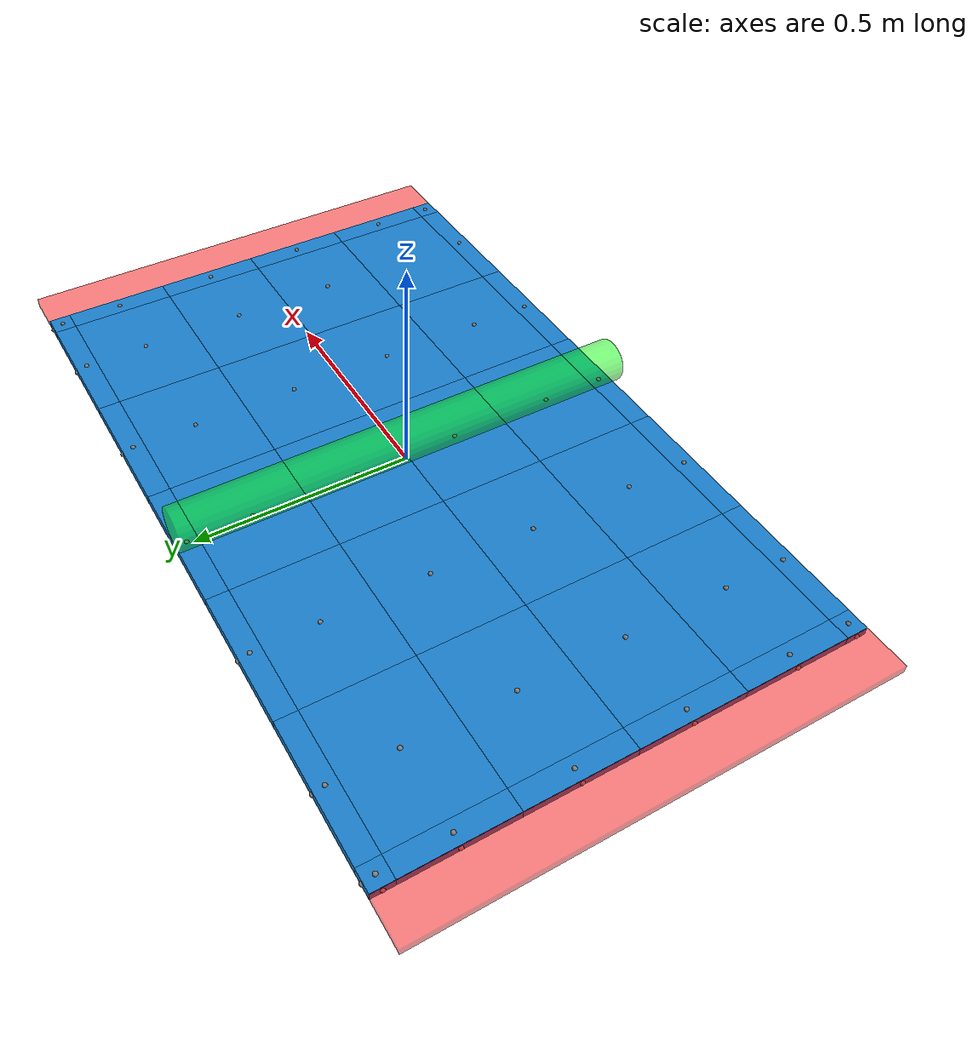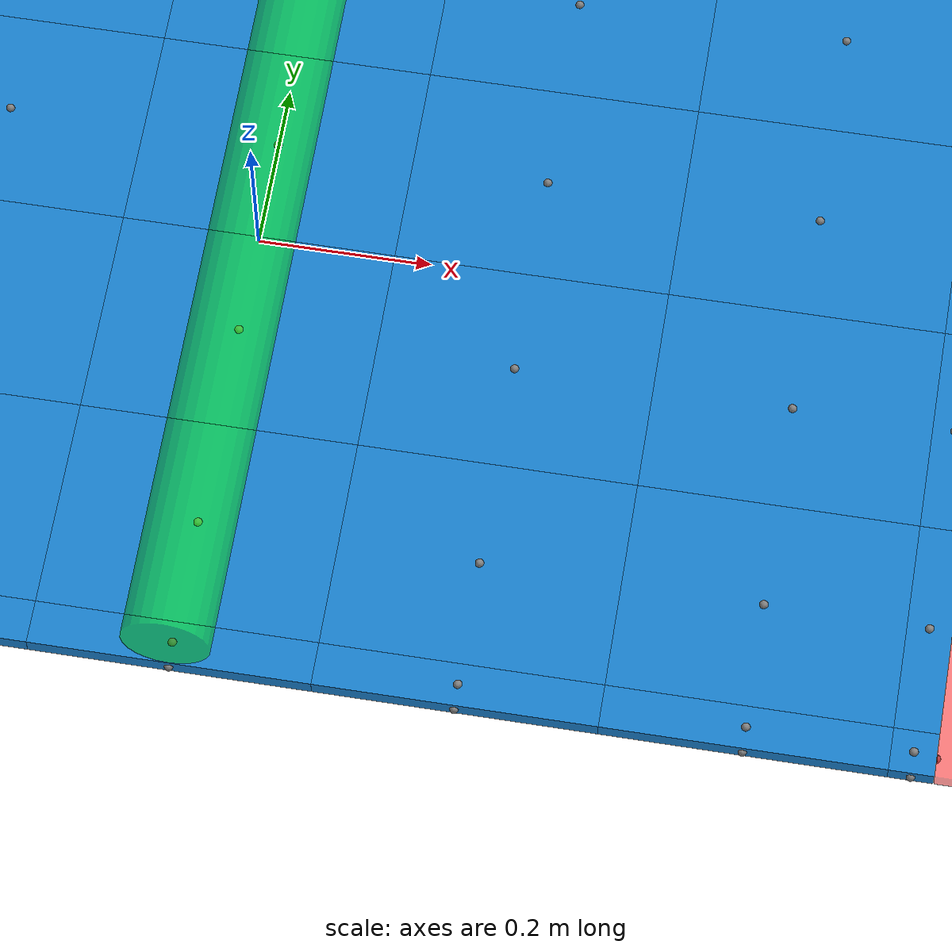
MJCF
<mujoco model="stiffness_test">
  <option integrator="implicitfast" timestep="0.001" gravity="0 0 0"><flag contact="enable"/></option>
  <default>
    <joint armature="0.01" damping="5.0"/>
    <geom friction="0.8" solref="0.02 1.0" solimp="0.9 0.95 0.001"/>
  </default>
  <worldbody>
    <light pos="0 0 5" dir="0 0 -1"/>
    <body name="BOpenCell">
      <body name="b_bopencell_0_0_0" pos="-0.81500 -0.51500 0.00000">
        <joint type="slide" axis="1 0 0"/>
        <joint type="slide" axis="0 1 0"/>
        <joint type="slide" axis="0 0 1"/>
        <joint type="ball"/>
        <geom type="box" size="0.02500 0.02500 0.01000" mass="0.006889" rgba="0.1 0.5 0.8 1.0" contype="4" conaffinity="2" friction="0.8" solref="0.01 1.0" solimp="0.9 0.95 0.001 0.5 2.0"/>
        <site name="s_BOpenCell_0_0_0_PX" pos="0.02500 0 0"/>
        <site name="s_BOpenCell_0_0_0_NX" pos="-0.02500 0 0"/>
        <site name="s_BOpenCell_0_0_0_PY" pos="0 0.02500 0"/>
        <site name="s_BOpenCell_0_0_0_NY" pos="0 -0.02500 0"/>
        <site name="s_BOpenCell_0_0_0_PZ" pos="0 0 0.01000"/>
        <site name="s_BOpenCell_0_0_0_NZ" pos="0 0 -0.01000"/>
      </body>
      <body name="b_bopencell_0_1_0" pos="-0.81500 -0.36750 0.00000">
        <joint type="slide" axis="1 0 0"/>
        <joint type="slide" axis="0 1 0"/>
        <joint type="slide" axis="0 0 1"/>
        <joint type="ball"/>
        <geom type="box" size="0.02500 0.12250 0.01000" mass="0.033758" rgba="0.1 0.5 0.8 1.0" contype="4" conaffinity="2" friction="0.8" solref="0.01 1.0" solimp="0.9 0.95 0.001 0.5 2.0"/>
        <site name="s_BOpenCell_0_1_0_PX" pos="0.02500 0 0"/>
        <site name="s_BOpenCell_0_1_0_NX" pos="-0.02500 0 0"/>
        <site name="s_BOpenCell_0_1_0_PY" pos="0 0.12250 0"/>
        <site name="s_BOpenCell_0_1_0_NY" pos="0 -0.12250 0"/>
        <site name="s_BOpenCell_0_1_0_PZ" pos="0 0 0.01000"/>
        <site name="s_BOpenCell_0_1_0_NZ" pos="0 0 -0.01000"/>
      </body>
      <body name="b_bopencell_0_2_0" pos="-0.81500 -0.12250 0.00000">
        <joint type="slide" axis="1 0 0"/>
        <joint type="slide" axis="0 1 0"/>
        <joint type="slide" axis="0 0 1"/>
        <joint type="ball"/>
        <geom type="box" size="0.02500 0.12250 0.01000" mass="0.033758" rgba="0.1 0.5 0.8 1.0" contype="4" conaffinity="2" friction="0.8" solref="0.01 1.0" solimp="0.9 0.95 0.001 0.5 2.0"/>
        <site name="s_BOpenCell_0_2_0_PX" pos="0.02500 0 0"/>
        <site name="s_BOpenCell_0_2_0_NX" pos="-0.02500 0 0"/>
        <site name="s_BOpenCell_0_2_0_PY" pos="0 0.12250 0"/>
        <site name="s_BOpenCell_0_2_0_NY" pos="0 -0.12250 0"/>
        <site name="s_BOpenCell_0_2_0_PZ" pos="0 0 0.01000"/>
        <site name="s_BOpenCell_0_2_0_NZ" pos="0 0 -0.01000"/>
      </body>
      <body name="b_bopencell_0_3_0" pos="-0.81500 0.12250 0.00000">
        <joint type="slide" axis="1 0 0"/>
        <joint type="slide" axis="0 1 0"/>
        <joint type="slide" axis="0 0 1"/>
        <joint type="ball"/>
        <geom type="box" size="0.02500 0.12250 0.01000" mass="0.033758" rgba="0.1 0.5 0.8 1.0" contype="4" conaffinity="2" friction="0.8" solref="0.01 1.0" solimp="0.9 0.95 0.001 0.5 2.0"/>
        <site name="s_BOpenCell_0_3_0_PX" pos="0.02500 0 0"/>
        <site name="s_BOpenCell_0_3_0_NX" pos="-0.02500 0 0"/>
        <site name="s_BOpenCell_0_3_0_PY" pos="0 0.12250 0"/>
        <site name="s_BOpenCell_0_3_0_NY" pos="0 -0.12250 0"/>
        <site name="s_BOpenCell_0_3_0_PZ" pos="0 0 0.01000"/>
        <site name="s_BOpenCell_0_3_0_NZ" pos="0 0 -0.01000"/>
      </body>
      <body name="b_bopencell_0_4_0" pos="-0.81500 0.36750 0.00000">
        <joint type="slide" axis="1 0 0"/>
        <joint type="slide" axis="0 1 0"/>
        <joint type="slide" axis="0 0 1"/>
        <joint type="ball"/>
        <geom type="box" size="0.02500 0.12250 0.01000" mass="0.033758" rgba="0.1 0.5 0.8 1.0" contype="4" conaffinity="2" friction="0.8" solref="0.01 1.0" solimp="0.9 0.95 0.001 0.5 2.0"/>
        <site name="s_BOpenCell_0_4_0_PX" pos="0.02500 0 0"/>
        <site name="s_BOpenCell_0_4_0_NX" pos="-0.02500 0 0"/>
        <site name="s_BOpenCell_0_4_0_PY" pos="0 0.12250 0"/>
        <site name="s_BOpenCell_0_4_0_NY" pos="0 -0.12250 0"/>
        <site name="s_BOpenCell_0_4_0_PZ" pos="0 0 0.01000"/>
        <site name="s_BOpenCell_0_4_0_NZ" pos="0 0 -0.01000"/>
      </body>
      <body name="b_bopencell_0_5_0" pos="-0.81500 0.51500 0.00000">
        <joint type="slide" axis="1 0 0"/>
        <joint type="slide" axis="0 1 0"/>
        <joint type="slide" axis="0 0 1"/>
        <joint type="ball"/>
        <geom type="box" size="0.02500 0.02500 0.01000" mass="0.006889" rgba="0.1 0.5 0.8 1.0" contype="4" conaffinity="2" friction="0.8" solref="0.01 1.0" solimp="0.9 0.95 0.001 0.5 2.0"/>
        <site name="s_BOpenCell_0_5_0_PX" pos="0.02500 0 0"/>
        <site name="s_BOpenCell_0_5_0_NX" pos="-0.02500 0 0"/>
        <site name="s_BOpenCell_0_5_0_PY" pos="0 0.02500 0"/>
        <site name="s_BOpenCell_0_5_0_NY" pos="0 -0.02500 0"/>
        <site name="s_BOpenCell_0_5_0_PZ" pos="0 0 0.01000"/>
        <site name="s_BOpenCell_0_5_0_NZ" pos="0 0 -0.01000"/>
      </body>
      <body name="b_bopencell_1_0_0" pos="-0.63200 -0.51500 0.00000">
        <joint type="slide" axis="1 0 0"/>
        <joint type="slide" axis="0 1 0"/>
        <joint type="slide" axis="0 0 1"/>
        <joint type="ball"/>
        <geom type="box" size="0.15800 0.02500 0.01000" mass="0.043541" rgba="0.1 0.5 0.8 1.0" contype="4" conaffinity="2" friction="0.8" solref="0.01 1.0" solimp="0.9 0.95 0.001 0.5 2.0"/>
        <site name="s_BOpenCell_1_0_0_PX" pos="0.15800 0 0"/>
        <site name="s_BOpenCell_1_0_0_NX" pos="-0.15800 0 0"/>
        <site name="s_BOpenCell_1_0_0_PY" pos="0 0.02500 0"/>
        <site name="s_BOpenCell_1_0_0_NY" pos="0 -0.02500 0"/>
        <site name="s_BOpenCell_1_0_0_PZ" pos="0 0 0.01000"/>
        <site name="s_BOpenCell_1_0_0_NZ" pos="0 0 -0.01000"/>
      </body>
      <body name="b_bopencell_1_1_0" pos="-0.63200 -0.36750 0.00000">
        <joint type="slide" axis="1 0 0"/>
        <joint type="slide" axis="0 1 0"/>
        <joint type="slide" axis="0 0 1"/>
        <joint type="ball"/>
        <geom type="box" size="0.15800 0.12250 0.01000" mass="0.213349" rgba="0.1 0.5 0.8 1.0" contype="4" conaffinity="2" friction="0.8" solref="0.01 1.0" solimp="0.9 0.95 0.001 0.5 2.0"/>
        <site name="s_BOpenCell_1_1_0_PX" pos="0.15800 0 0"/>
        <site name="s_BOpenCell_1_1_0_NX" pos="-0.15800 0 0"/>
        <site name="s_BOpenCell_1_1_0_PY" pos="0 0.12250 0"/>
        <site name="s_BOpenCell_1_1_0_NY" pos="0 -0.12250 0"/>
        <site name="s_BOpenCell_1_1_0_PZ" pos="0 0 0.01000"/>
        <site name="s_BOpenCell_1_1_0_NZ" pos="0 0 -0.01000"/>
      </body>
      <body name="b_bopencell_1_2_0" pos="-0.63200 -0.12250 0.00000">
        <joint type="slide" axis="1 0 0"/>
        <joint type="slide" axis="0 1 0"/>
        <joint type="slide" axis="0 0 1"/>
        <joint type="ball"/>
        <geom type="box" size="0.15800 0.12250 0.01000" mass="0.213349" rgba="0.1 0.5 0.8 1.0" contype="4" conaffinity="2" friction="0.8" solref="0.01 1.0" solimp="0.9 0.95 0.001 0.5 2.0"/>
        <site name="s_BOpenCell_1_2_0_PX" pos="0.15800 0 0"/>
        <site name="s_BOpenCell_1_2_0_NX" pos="-0.15800 0 0"/>
        <site name="s_BOpenCell_1_2_0_PY" pos="0 0.12250 0"/>
        <site name="s_BOpenCell_1_2_0_NY" pos="0 -0.12250 0"/>
        <site name="s_BOpenCell_1_2_0_PZ" pos="0 0 0.01000"/>
        <site name="s_BOpenCell_1_2_0_NZ" pos="0 0 -0.01000"/>
      </body>
      <body name="b_bopencell_1_3_0" pos="-0.63200 0.12250 0.00000">
        <joint type="slide" axis="1 0 0"/>
        <joint type="slide" axis="0 1 0"/>
        <joint type="slide" axis="0 0 1"/>
        <joint type="ball"/>
        <geom type="box" size="0.15800 0.12250 0.01000" mass="0.213349" rgba="0.1 0.5 0.8 1.0" contype="4" conaffinity="2" friction="0.8" solref="0.01 1.0" solimp="0.9 0.95 0.001 0.5 2.0"/>
        <site name="s_BOpenCell_1_3_0_PX" pos="0.15800 0 0"/>
        <site name="s_BOpenCell_1_3_0_NX" pos="-0.15800 0 0"/>
        <site name="s_BOpenCell_1_3_0_PY" pos="0 0.12250 0"/>
        <site name="s_BOpenCell_1_3_0_NY" pos="0 -0.12250 0"/>
        <site name="s_BOpenCell_1_3_0_PZ" pos="0 0 0.01000"/>
        <site name="s_BOpenCell_1_3_0_NZ" pos="0 0 -0.01000"/>
      </body>
      <body name="b_bopencell_1_4_0" pos="-0.63200 0.36750 0.00000">
        <joint type="slide" axis="1 0 0"/>
        <joint type="slide" axis="0 1 0"/>
        <joint type="slide" axis="0 0 1"/>
        <joint type="ball"/>
        <geom type="box" size="0.15800 0.12250 0.01000" mass="0.213349" rgba="0.1 0.5 0.8 1.0" contype="4" conaffinity="2" friction="0.8" solref="0.01 1.0" solimp="0.9 0.95 0.001 0.5 2.0"/>
        <site name="s_BOpenCell_1_4_0_PX" pos="0.15800 0 0"/>
        <site name="s_BOpenCell_1_4_0_NX" pos="-0.15800 0 0"/>
        <site name="s_BOpenCell_1_4_0_PY" pos="0 0.12250 0"/>
        <site name="s_BOpenCell_1_4_0_NY" pos="0 -0.12250 0"/>
        <site name="s_BOpenCell_1_4_0_PZ" pos="0 0 0.01000"/>
        <site name="s_BOpenCell_1_4_0_NZ" pos="0 0 -0.01000"/>
      </body>
      <body name="b_bopencell_1_5_0" pos="-0.63200 0.51500 0.00000">
        <joint type="slide" axis="1 0 0"/>
        <joint type="slide" axis="0 1 0"/>
        <joint type="slide" axis="0 0 1"/>
        <joint type="ball"/>
        <geom type="box" size="0.15800 0.02500 0.01000" mass="0.043541" rgba="0.1 0.5 0.8 1.0" contype="4" conaffinity="2" friction="0.8" solref="0.01 1.0" solimp="0.9 0.95 0.001 0.5 2.0"/>
        <site name="s_BOpenCell_1_5_0_PX" pos="0.15800 0 0"/>
        <site name="s_BOpenCell_1_5_0_NX" pos="-0.15800 0 0"/>
        <site name="s_BOpenCell_1_5_0_PY" pos="0 0.02500 0"/>
        <site name="s_BOpenCell_1_5_0_NY" pos="0 -0.02500 0"/>
        <site name="s_BOpenCell_1_5_0_PZ" pos="0 0 0.01000"/>
        <site name="s_BOpenCell_1_5_0_NZ" pos="0 0 -0.01000"/>
      </body>
      <body name="b_bopencell_2_0_0" pos="-0.31600 -0.51500 0.00000">
        <joint type="slide" axis="1 0 0"/>
        <joint type="slide" axis="0 1 0"/>
        <joint type="slide" axis="0 0 1"/>
        <joint type="ball"/>
        <geom type="box" size="0.15800 0.02500 0.01000" mass="0.043541" rgba="0.1 0.5 0.8 1.0" contype="4" conaffinity="2" friction="0.8" solref="0.01 1.0" solimp="0.9 0.95 0.001 0.5 2.0"/>
        <site name="s_BOpenCell_2_0_0_PX" pos="0.15800 0 0"/>
        <site name="s_BOpenCell_2_0_0_NX" pos="-0.15800 0 0"/>
        <site name="s_BOpenCell_2_0_0_PY" pos="0 0.02500 0"/>
        <site name="s_BOpenCell_2_0_0_NY" pos="0 -0.02500 0"/>
        <site name="s_BOpenCell_2_0_0_PZ" pos="0 0 0.01000"/>
        <site name="s_BOpenCell_2_0_0_NZ" pos="0 0 -0.01000"/>
      </body>
      <body name="b_bopencell_2_1_0" pos="-0.31600 -0.36750 0.00000">
        <joint type="slide" axis="1 0 0"/>
        <joint type="slide" axis="0 1 0"/>
        <joint type="slide" axis="0 0 1"/>
        <joint type="ball"/>
        <geom type="box" size="0.15800 0.12250 0.01000" mass="0.213349" rgba="0.1 0.5 0.8 1.0" contype="4" conaffinity="2" friction="0.8" solref="0.01 1.0" solimp="0.9 0.95 0.001 0.5 2.0"/>
        <site name="s_BOpenCell_2_1_0_PX" pos="0.15800 0 0"/>
        <site name="s_BOpenCell_2_1_0_NX" pos="-0.15800 0 0"/>
        <site name="s_BOpenCell_2_1_0_PY" pos="0 0.12250 0"/>
        <site name="s_BOpenCell_2_1_0_NY" pos="0 -0.12250 0"/>
        <site name="s_BOpenCell_2_1_0_PZ" pos="0 0 0.01000"/>
        <site name="s_BOpenCell_2_1_0_NZ" pos="0 0 -0.01000"/>
      </body>
      <body name="b_bopencell_2_2_0" pos="-0.31600 -0.12250 0.00000">
        <joint type="slide" axis="1 0 0"/>
        <joint type="slide" axis="0 1 0"/>
        <joint type="slide" axis="0 0 1"/>
        <joint type="ball"/>
        <geom type="box" size="0.15800 0.12250 0.01000" mass="0.213349" rgba="0.1 0.5 0.8 1.0" contype="4" conaffinity="2" friction="0.8" solref="0.01 1.0" solimp="0.9 0.95 0.001 0.5 2.0"/>
        <site name="s_BOpenCell_2_2_0_PX" pos="0.15800 0 0"/>
        <site name="s_BOpenCell_2_2_0_NX" pos="-0.15800 0 0"/>
        <site name="s_BOpenCell_2_2_0_PY" pos="0 0.12250 0"/>
        <site name="s_BOpenCell_2_2_0_NY" pos="0 -0.12250 0"/>
        <site name="s_BOpenCell_2_2_0_PZ" pos="0 0 0.01000"/>
        <site name="s_BOpenCell_2_2_0_NZ" pos="0 0 -0.01000"/>
      </body>
      <body name="b_bopencell_2_3_0" pos="-0.31600 0.12250 0.00000">
        <joint type="slide" axis="1 0 0"/>
        <joint type="slide" axis="0 1 0"/>
        <joint type="slide" axis="0 0 1"/>
        <joint type="ball"/>
        <geom type="box" size="0.15800 0.12250 0.01000" mass="0.213349" rgba="0.1 0.5 0.8 1.0" contype="4" conaffinity="2" friction="0.8" solref="0.01 1.0" solimp="0.9 0.95 0.001 0.5 2.0"/>
        <site name="s_BOpenCell_2_3_0_PX" pos="0.15800 0 0"/>
        <site name="s_BOpenCell_2_3_0_NX" pos="-0.15800 0 0"/>
        <site name="s_BOpenCell_2_3_0_PY" pos="0 0.12250 0"/>
        <site name="s_BOpenCell_2_3_0_NY" pos="0 -0.12250 0"/>
        <site name="s_BOpenCell_2_3_0_PZ" pos="0 0 0.01000"/>
        <site name="s_BOpenCell_2_3_0_NZ" pos="0 0 -0.01000"/>
      </body>
      <body name="b_bopencell_2_4_0" pos="-0.31600 0.36750 0.00000">
        <joint type="slide" axis="1 0 0"/>
        <joint type="slide" axis="0 1 0"/>
        <joint type="slide" axis="0 0 1"/>
        <joint type="ball"/>
        <geom type="box" size="0.15800 0.12250 0.01000" mass="0.213349" rgba="0.1 0.5 0.8 1.0" contype="4" conaffinity="2" friction="0.8" solref="0.01 1.0" solimp="0.9 0.95 0.001 0.5 2.0"/>
        <site name="s_BOpenCell_2_4_0_PX" pos="0.15800 0 0"/>
        <site name="s_BOpenCell_2_4_0_NX" pos="-0.15800 0 0"/>
        <site name="s_BOpenCell_2_4_0_PY" pos="0 0.12250 0"/>
        <site name="s_BOpenCell_2_4_0_NY" pos="0 -0.12250 0"/>
        <site name="s_BOpenCell_2_4_0_PZ" pos="0 0 0.01000"/>
        <site name="s_BOpenCell_2_4_0_NZ" pos="0 0 -0.01000"/>
      </body>
      <body name="b_bopencell_2_5_0" pos="-0.31600 0.51500 0.00000">
        <joint type="slide" axis="1 0 0"/>
        <joint type="slide" axis="0 1 0"/>
        <joint type="slide" axis="0 0 1"/>
        <joint type="ball"/>
        <geom type="box" size="0.15800 0.02500 0.01000" mass="0.043541" rgba="0.1 0.5 0.8 1.0" contype="4" conaffinity="2" friction="0.8" solref="0.01 1.0" solimp="0.9 0.95 0.001 0.5 2.0"/>
        <site name="s_BOpenCell_2_5_0_PX" pos="0.15800 0 0"/>
        <site name="s_BOpenCell_2_5_0_NX" pos="-0.15800 0 0"/>
        <site name="s_BOpenCell_2_5_0_PY" pos="0 0.02500 0"/>
        <site name="s_BOpenCell_2_5_0_NY" pos="0 -0.02500 0"/>
        <site name="s_BOpenCell_2_5_0_PZ" pos="0 0 0.01000"/>
        <site name="s_BOpenCell_2_5_0_NZ" pos="0 0 -0.01000"/>
      </body>
      <body name="b_bopencell_3_0_0" pos="0.00000 -0.51500 0.00000">
        <joint type="slide" axis="1 0 0"/>
        <joint type="slide" axis="0 1 0"/>
        <joint type="slide" axis="0 0 1"/>
        <joint type="ball"/>
        <geom type="box" size="0.15800 0.02500 0.01000" mass="0.043541" rgba="0.1 0.5 0.8 1.0" contype="4" conaffinity="2" friction="0.8" solref="0.01 1.0" solimp="0.9 0.95 0.001 0.5 2.0"/>
        <site name="s_BOpenCell_3_0_0_PX" pos="0.15800 0 0"/>
        <site name="s_BOpenCell_3_0_0_NX" pos="-0.15800 0 0"/>
        <site name="s_BOpenCell_3_0_0_PY" pos="0 0.02500 0"/>
        <site name="s_BOpenCell_3_0_0_NY" pos="0 -0.02500 0"/>
        <site name="s_BOpenCell_3_0_0_PZ" pos="0 0 0.01000"/>
        <site name="s_BOpenCell_3_0_0_NZ" pos="0 0 -0.01000"/>
      </body>
      <body name="b_bopencell_3_1_0" pos="0.00000 -0.36750 0.00000">
        <joint type="slide" axis="1 0 0"/>
        <joint type="slide" axis="0 1 0"/>
        <joint type="slide" axis="0 0 1"/>
        <joint type="ball"/>
        <geom type="box" size="0.15800 0.12250 0.01000" mass="0.213349" rgba="0.1 0.5 0.8 1.0" contype="4" conaffinity="2" friction="0.8" solref="0.01 1.0" solimp="0.9 0.95 0.001 0.5 2.0"/>
        <site name="s_BOpenCell_3_1_0_PX" pos="0.15800 0 0"/>
        <site name="s_BOpenCell_3_1_0_NX" pos="-0.15800 0 0"/>
        <site name="s_BOpenCell_3_1_0_PY" pos="0 0.12250 0"/>
        <site name="s_BOpenCell_3_1_0_NY" pos="0 -0.12250 0"/>
        <site name="s_BOpenCell_3_1_0_PZ" pos="0 0 0.01000"/>
        <site name="s_BOpenCell_3_1_0_NZ" pos="0 0 -0.01000"/>
      </body>
      <body name="b_bopencell_3_2_0" pos="0.00000 -0.12250 0.00000">
        <joint type="slide" axis="1 0 0"/>
        <joint type="slide" axis="0 1 0"/>
        <joint type="slide" axis="0 0 1"/>
        <joint type="ball"/>
        <geom type="box" size="0.15800 0.12250 0.01000" mass="0.213349" rgba="0.1 0.5 0.8 1.0" contype="4" conaffinity="2" friction="0.8" solref="0.01 1.0" solimp="0.9 0.95 0.001 0.5 2.0"/>
        <site name="s_BOpenCell_3_2_0_PX" pos="0.15800 0 0"/>
        <site name="s_BOpenCell_3_2_0_NX" pos="-0.15800 0 0"/>
        <site name="s_BOpenCell_3_2_0_PY" pos="0 0.12250 0"/>
        <site name="s_BOpenCell_3_2_0_NY" pos="0 -0.12250 0"/>
        <site name="s_BOpenCell_3_2_0_PZ" pos="0 0 0.01000"/>
        <site name="s_BOpenCell_3_2_0_NZ" pos="0 0 -0.01000"/>
      </body>
      <body name="b_bopencell_3_3_0" pos="0.00000 0.12250 0.00000">
        <joint type="slide" axis="1 0 0"/>
        <joint type="slide" axis="0 1 0"/>
        <joint type="slide" axis="0 0 1"/>
        <joint type="ball"/>
        <geom type="box" size="0.15800 0.12250 0.01000" mass="0.213349" rgba="0.1 0.5 0.8 1.0" contype="4" conaffinity="2" friction="0.8" solref="0.01 1.0" solimp="0.9 0.95 0.001 0.5 2.0"/>
        <site name="s_BOpenCell_3_3_0_PX" pos="0.15800 0 0"/>
        <site name="s_BOpenCell_3_3_0_NX" pos="-0.15800 0 0"/>
        <site name="s_BOpenCell_3_3_0_PY" pos="0 0.12250 0"/>
        <site name="s_BOpenCell_3_3_0_NY" pos="0 -0.12250 0"/>
        <site name="s_BOpenCell_3_3_0_PZ" pos="0 0 0.01000"/>
        <site name="s_BOpenCell_3_3_0_NZ" pos="0 0 -0.01000"/>
      </body>
      <body name="b_bopencell_3_4_0" pos="0.00000 0.36750 0.00000">
        <joint type="slide" axis="1 0 0"/>
        <joint type="slide" axis="0 1 0"/>
        <joint type="slide" axis="0 0 1"/>
        <joint type="ball"/>
        <geom type="box" size="0.15800 0.12250 0.01000" mass="0.213349" rgba="0.1 0.5 0.8 1.0" contype="4" conaffinity="2" friction="0.8" solref="0.01 1.0" solimp="0.9 0.95 0.001 0.5 2.0"/>
        <site name="s_BOpenCell_3_4_0_PX" pos="0.15800 0 0"/>
        <site name="s_BOpenCell_3_4_0_NX" pos="-0.15800 0 0"/>
        <site name="s_BOpenCell_3_4_0_PY" pos="0 0.12250 0"/>
        <site name="s_BOpenCell_3_4_0_NY" pos="0 -0.12250 0"/>
        <site name="s_BOpenCell_3_4_0_PZ" pos="0 0 0.01000"/>
        <site name="s_BOpenCell_3_4_0_NZ" pos="0 0 -0.01000"/>
      </body>
      <body name="b_bopencell_3_5_0" pos="0.00000 0.51500 0.00000">
        <joint type="slide" axis="1 0 0"/>
        <joint type="slide" axis="0 1 0"/>
        <joint type="slide" axis="0 0 1"/>
        <joint type="ball"/>
        <geom type="box" size="0.15800 0.02500 0.01000" mass="0.043541" rgba="0.1 0.5 0.8 1.0" contype="4" conaffinity="2" friction="0.8" solref="0.01 1.0" solimp="0.9 0.95 0.001 0.5 2.0"/>
        <site name="s_BOpenCell_3_5_0_PX" pos="0.15800 0 0"/>
        <site name="s_BOpenCell_3_5_0_NX" pos="-0.15800 0 0"/>
        <site name="s_BOpenCell_3_5_0_PY" pos="0 0.02500 0"/>
        <site name="s_BOpenCell_3_5_0_NY" pos="0 -0.02500 0"/>
        <site name="s_BOpenCell_3_5_0_PZ" pos="0 0 0.01000"/>
        <site name="s_BOpenCell_3_5_0_NZ" pos="0 0 -0.01000"/>
      </body>
      <body name="b_bopencell_4_0_0" pos="0.31600 -0.51500 0.00000">
        <joint type="slide" axis="1 0 0"/>
        <joint type="slide" axis="0 1 0"/>
        <joint type="slide" axis="0 0 1"/>
        <joint type="ball"/>
        <geom type="box" size="0.15800 0.02500 0.01000" mass="0.043541" rgba="0.1 0.5 0.8 1.0" contype="4" conaffinity="2" friction="0.8" solref="0.01 1.0" solimp="0.9 0.95 0.001 0.5 2.0"/>
        <site name="s_BOpenCell_4_0_0_PX" pos="0.15800 0 0"/>
        <site name="s_BOpenCell_4_0_0_NX" pos="-0.15800 0 0"/>
        <site name="s_BOpenCell_4_0_0_PY" pos="0 0.02500 0"/>
        <site name="s_BOpenCell_4_0_0_NY" pos="0 -0.02500 0"/>
        <site name="s_BOpenCell_4_0_0_PZ" pos="0 0 0.01000"/>
        <site name="s_BOpenCell_4_0_0_NZ" pos="0 0 -0.01000"/>
      </body>
      <body name="b_bopencell_4_1_0" pos="0.31600 -0.36750 0.00000">
        <joint type="slide" axis="1 0 0"/>
        <joint type="slide" axis="0 1 0"/>
        <joint type="slide" axis="0 0 1"/>
        <joint type="ball"/>
        <geom type="box" size="0.15800 0.12250 0.01000" mass="0.213349" rgba="0.1 0.5 0.8 1.0" contype="4" conaffinity="2" friction="0.8" solref="0.01 1.0" solimp="0.9 0.95 0.001 0.5 2.0"/>
        <site name="s_BOpenCell_4_1_0_PX" pos="0.15800 0 0"/>
        <site name="s_BOpenCell_4_1_0_NX" pos="-0.15800 0 0"/>
        <site name="s_BOpenCell_4_1_0_PY" pos="0 0.12250 0"/>
        <site name="s_BOpenCell_4_1_0_NY" pos="0 -0.12250 0"/>
        <site name="s_BOpenCell_4_1_0_PZ" pos="0 0 0.01000"/>
        <site name="s_BOpenCell_4_1_0_NZ" pos="0 0 -0.01000"/>
      </body>
      <body name="b_bopencell_4_2_0" pos="0.31600 -0.12250 0.00000">
        <joint type="slide" axis="1 0 0"/>
        <joint type="slide" axis="0 1 0"/>
        <joint type="slide" axis="0 0 1"/>
        <joint type="ball"/>
        <geom type="box" size="0.15800 0.12250 0.01000" mass="0.213349" rgba="0.1 0.5 0.8 1.0" contype="4" conaffinity="2" friction="0.8" solref="0.01 1.0" solimp="0.9 0.95 0.001 0.5 2.0"/>
        <site name="s_BOpenCell_4_2_0_PX" pos="0.15800 0 0"/>
        <site name="s_BOpenCell_4_2_0_NX" pos="-0.15800 0 0"/>
        <site name="s_BOpenCell_4_2_0_PY" pos="0 0.12250 0"/>
        <site name="s_BOpenCell_4_2_0_NY" pos="0 -0.12250 0"/>
        <site name="s_BOpenCell_4_2_0_PZ" pos="0 0 0.01000"/>
        <site name="s_BOpenCell_4_2_0_NZ" pos="0 0 -0.01000"/>
      </body>
      <body name="b_bopencell_4_3_0" pos="0.31600 0.12250 0.00000">
        <joint type="slide" axis="1 0 0"/>
        <joint type="slide" axis="0 1 0"/>
        <joint type="slide" axis="0 0 1"/>
        <joint type="ball"/>
        <geom type="box" size="0.15800 0.12250 0.01000" mass="0.213349" rgba="0.1 0.5 0.8 1.0" contype="4" conaffinity="2" friction="0.8" solref="0.01 1.0" solimp="0.9 0.95 0.001 0.5 2.0"/>
        <site name="s_BOpenCell_4_3_0_PX" pos="0.15800 0 0"/>
        <site name="s_BOpenCell_4_3_0_NX" pos="-0.15800 0 0"/>
        <site name="s_BOpenCell_4_3_0_PY" pos="0 0.12250 0"/>
        <site name="s_BOpenCell_4_3_0_NY" pos="0 -0.12250 0"/>
        <site name="s_BOpenCell_4_3_0_PZ" pos="0 0 0.01000"/>
        <site name="s_BOpenCell_4_3_0_NZ" pos="0 0 -0.01000"/>
      </body>
      <body name="b_bopencell_4_4_0" pos="0.31600 0.36750 0.00000">
        <joint type="slide" axis="1 0 0"/>
        <joint type="slide" axis="0 1 0"/>
        <joint type="slide" axis="0 0 1"/>
        <joint type="ball"/>
        <geom type="box" size="0.15800 0.12250 0.01000" mass="0.213349" rgba="0.1 0.5 0.8 1.0" contype="4" conaffinity="2" friction="0.8" solref="0.01 1.0" solimp="0.9 0.95 0.001 0.5 2.0"/>
        <site name="s_BOpenCell_4_4_0_PX" pos="0.15800 0 0"/>
        <site name="s_BOpenCell_4_4_0_NX" pos="-0.15800 0 0"/>
        <site name="s_BOpenCell_4_4_0_PY" pos="0 0.12250 0"/>
        <site name="s_BOpenCell_4_4_0_NY" pos="0 -0.12250 0"/>
        <site name="s_BOpenCell_4_4_0_PZ" pos="0 0 0.01000"/>
        <site name="s_BOpenCell_4_4_0_NZ" pos="0 0 -0.01000"/>
      </body>
      <body name="b_bopencell_4_5_0" pos="0.31600 0.51500 0.00000">
        <joint type="slide" axis="1 0 0"/>
        <joint type="slide" axis="0 1 0"/>
        <joint type="slide" axis="0 0 1"/>
        <joint type="ball"/>
        <geom type="box" size="0.15800 0.02500 0.01000" mass="0.043541" rgba="0.1 0.5 0.8 1.0" contype="4" conaffinity="2" friction="0.8" solref="0.01 1.0" solimp="0.9 0.95 0.001 0.5 2.0"/>
        <site name="s_BOpenCell_4_5_0_PX" pos="0.15800 0 0"/>
        <site name="s_BOpenCell_4_5_0_NX" pos="-0.15800 0 0"/>
        <site name="s_BOpenCell_4_5_0_PY" pos="0 0.02500 0"/>
        <site name="s_BOpenCell_4_5_0_NY" pos="0 -0.02500 0"/>
        <site name="s_BOpenCell_4_5_0_PZ" pos="0 0 0.01000"/>
        <site name="s_BOpenCell_4_5_0_NZ" pos="0 0 -0.01000"/>
      </body>
      <body name="b_bopencell_5_0_0" pos="0.63200 -0.51500 0.00000">
        <joint type="slide" axis="1 0 0"/>
        <joint type="slide" axis="0 1 0"/>
        <joint type="slide" axis="0 0 1"/>
        <joint type="ball"/>
        <geom type="box" size="0.15800 0.02500 0.01000" mass="0.043541" rgba="0.1 0.5 0.8 1.0" contype="4" conaffinity="2" friction="0.8" solref="0.01 1.0" solimp="0.9 0.95 0.001 0.5 2.0"/>
        <site name="s_BOpenCell_5_0_0_PX" pos="0.15800 0 0"/>
        <site name="s_BOpenCell_5_0_0_NX" pos="-0.15800 0 0"/>
        <site name="s_BOpenCell_5_0_0_PY" pos="0 0.02500 0"/>
        <site name="s_BOpenCell_5_0_0_NY" pos="0 -0.02500 0"/>
        <site name="s_BOpenCell_5_0_0_PZ" pos="0 0 0.01000"/>
        <site name="s_BOpenCell_5_0_0_NZ" pos="0 0 -0.01000"/>
      </body>
      <body name="b_bopencell_5_1_0" pos="0.63200 -0.36750 0.00000">
        <joint type="slide" axis="1 0 0"/>
        <joint type="slide" axis="0 1 0"/>
        <joint type="slide" axis="0 0 1"/>
        <joint type="ball"/>
        <geom type="box" size="0.15800 0.12250 0.01000" mass="0.213349" rgba="0.1 0.5 0.8 1.0" contype="4" conaffinity="2" friction="0.8" solref="0.01 1.0" solimp="0.9 0.95 0.001 0.5 2.0"/>
        <site name="s_BOpenCell_5_1_0_PX" pos="0.15800 0 0"/>
        <site name="s_BOpenCell_5_1_0_NX" pos="-0.15800 0 0"/>
        <site name="s_BOpenCell_5_1_0_PY" pos="0 0.12250 0"/>
        <site name="s_BOpenCell_5_1_0_NY" pos="0 -0.12250 0"/>
        <site name="s_BOpenCell_5_1_0_PZ" pos="0 0 0.01000"/>
        <site name="s_BOpenCell_5_1_0_NZ" pos="0 0 -0.01000"/>
      </body>
      <body name="b_bopencell_5_2_0" pos="0.63200 -0.12250 0.00000">
        <joint type="slide" axis="1 0 0"/>
        <joint type="slide" axis="0 1 0"/>
        <joint type="slide" axis="0 0 1"/>
        <joint type="ball"/>
        <geom type="box" size="0.15800 0.12250 0.01000" mass="0.213349" rgba="0.1 0.5 0.8 1.0" contype="4" conaffinity="2" friction="0.8" solref="0.01 1.0" solimp="0.9 0.95 0.001 0.5 2.0"/>
        <site name="s_BOpenCell_5_2_0_PX" pos="0.15800 0 0"/>
        <site name="s_BOpenCell_5_2_0_NX" pos="-0.15800 0 0"/>
        <site name="s_BOpenCell_5_2_0_PY" pos="0 0.12250 0"/>
        <site name="s_BOpenCell_5_2_0_NY" pos="0 -0.12250 0"/>
        <site name="s_BOpenCell_5_2_0_PZ" pos="0 0 0.01000"/>
        <site name="s_BOpenCell_5_2_0_NZ" pos="0 0 -0.01000"/>
      </body>
      <body name="b_bopencell_5_3_0" pos="0.63200 0.12250 0.00000">
        <joint type="slide" axis="1 0 0"/>
        <joint type="slide" axis="0 1 0"/>
        <joint type="slide" axis="0 0 1"/>
        <joint type="ball"/>
        <geom type="box" size="0.15800 0.12250 0.01000" mass="0.213349" rgba="0.1 0.5 0.8 1.0" contype="4" conaffinity="2" friction="0.8" solref="0.01 1.0" solimp="0.9 0.95 0.001 0.5 2.0"/>
        <site name="s_BOpenCell_5_3_0_PX" pos="0.15800 0 0"/>
        <site name="s_BOpenCell_5_3_0_NX" pos="-0.15800 0 0"/>
        <site name="s_BOpenCell_5_3_0_PY" pos="0 0.12250 0"/>
        <site name="s_BOpenCell_5_3_0_NY" pos="0 -0.12250 0"/>
        <site name="s_BOpenCell_5_3_0_PZ" pos="0 0 0.01000"/>
        <site name="s_BOpenCell_5_3_0_NZ" pos="0 0 -0.01000"/>
      </body>
      <body name="b_bopencell_5_4_0" pos="0.63200 0.36750 0.00000">
        <joint type="slide" axis="1 0 0"/>
        <joint type="slide" axis="0 1 0"/>
        <joint type="slide" axis="0 0 1"/>
        <joint type="ball"/>
        <geom type="box" size="0.15800 0.12250 0.01000" mass="0.213349" rgba="0.1 0.5 0.8 1.0" contype="4" conaffinity="2" friction="0.8" solref="0.01 1.0" solimp="0.9 0.95 0.001 0.5 2.0"/>
        <site name="s_BOpenCell_5_4_0_PX" pos="0.15800 0 0"/>
        <site name="s_BOpenCell_5_4_0_NX" pos="-0.15800 0 0"/>
        <site name="s_BOpenCell_5_4_0_PY" pos="0 0.12250 0"/>
        <site name="s_BOpenCell_5_4_0_NY" pos="0 -0.12250 0"/>
        <site name="s_BOpenCell_5_4_0_PZ" pos="0 0 0.01000"/>
        <site name="s_BOpenCell_5_4_0_NZ" pos="0 0 -0.01000"/>
      </body>
      <body name="b_bopencell_5_5_0" pos="0.63200 0.51500 0.00000">
        <joint type="slide" axis="1 0 0"/>
        <joint type="slide" axis="0 1 0"/>
        <joint type="slide" axis="0 0 1"/>
        <joint type="ball"/>
        <geom type="box" size="0.15800 0.02500 0.01000" mass="0.043541" rgba="0.1 0.5 0.8 1.0" contype="4" conaffinity="2" friction="0.8" solref="0.01 1.0" solimp="0.9 0.95 0.001 0.5 2.0"/>
        <site name="s_BOpenCell_5_5_0_PX" pos="0.15800 0 0"/>
        <site name="s_BOpenCell_5_5_0_NX" pos="-0.15800 0 0"/>
        <site name="s_BOpenCell_5_5_0_PY" pos="0 0.02500 0"/>
        <site name="s_BOpenCell_5_5_0_NY" pos="0 -0.02500 0"/>
        <site name="s_BOpenCell_5_5_0_PZ" pos="0 0 0.01000"/>
        <site name="s_BOpenCell_5_5_0_NZ" pos="0 0 -0.01000"/>
      </body>
      <body name="b_bopencell_6_0_0" pos="0.81500 -0.51500 0.00000">
        <joint type="slide" axis="1 0 0"/>
        <joint type="slide" axis="0 1 0"/>
        <joint type="slide" axis="0 0 1"/>
        <joint type="ball"/>
        <geom type="box" size="0.02500 0.02500 0.01000" mass="0.006889" rgba="0.1 0.5 0.8 1.0" contype="4" conaffinity="2" friction="0.8" solref="0.01 1.0" solimp="0.9 0.95 0.001 0.5 2.0"/>
        <site name="s_BOpenCell_6_0_0_PX" pos="0.02500 0 0"/>
        <site name="s_BOpenCell_6_0_0_NX" pos="-0.02500 0 0"/>
        <site name="s_BOpenCell_6_0_0_PY" pos="0 0.02500 0"/>
        <site name="s_BOpenCell_6_0_0_NY" pos="0 -0.02500 0"/>
        <site name="s_BOpenCell_6_0_0_PZ" pos="0 0 0.01000"/>
        <site name="s_BOpenCell_6_0_0_NZ" pos="0 0 -0.01000"/>
      </body>
      <body name="b_bopencell_6_1_0" pos="0.81500 -0.36750 0.00000">
        <joint type="slide" axis="1 0 0"/>
        <joint type="slide" axis="0 1 0"/>
        <joint type="slide" axis="0 0 1"/>
        <joint type="ball"/>
        <geom type="box" size="0.02500 0.12250 0.01000" mass="0.033758" rgba="0.1 0.5 0.8 1.0" contype="4" conaffinity="2" friction="0.8" solref="0.01 1.0" solimp="0.9 0.95 0.001 0.5 2.0"/>
        <site name="s_BOpenCell_6_1_0_PX" pos="0.02500 0 0"/>
        <site name="s_BOpenCell_6_1_0_NX" pos="-0.02500 0 0"/>
        <site name="s_BOpenCell_6_1_0_PY" pos="0 0.12250 0"/>
        <site name="s_BOpenCell_6_1_0_NY" pos="0 -0.12250 0"/>
        <site name="s_BOpenCell_6_1_0_PZ" pos="0 0 0.01000"/>
        <site name="s_BOpenCell_6_1_0_NZ" pos="0 0 -0.01000"/>
      </body>
      <body name="b_bopencell_6_2_0" pos="0.81500 -0.12250 0.00000">
        <joint type="slide" axis="1 0 0"/>
        <joint type="slide" axis="0 1 0"/>
        <joint type="slide" axis="0 0 1"/>
        <joint type="ball"/>
        <geom type="box" size="0.02500 0.12250 0.01000" mass="0.033758" rgba="0.1 0.5 0.8 1.0" contype="4" conaffinity="2" friction="0.8" solref="0.01 1.0" solimp="0.9 0.95 0.001 0.5 2.0"/>
        <site name="s_BOpenCell_6_2_0_PX" pos="0.02500 0 0"/>
        <site name="s_BOpenCell_6_2_0_NX" pos="-0.02500 0 0"/>
        <site name="s_BOpenCell_6_2_0_PY" pos="0 0.12250 0"/>
        <site name="s_BOpenCell_6_2_0_NY" pos="0 -0.12250 0"/>
        <site name="s_BOpenCell_6_2_0_PZ" pos="0 0 0.01000"/>
        <site name="s_BOpenCell_6_2_0_NZ" pos="0 0 -0.01000"/>
      </body>
      <body name="b_bopencell_6_3_0" pos="0.81500 0.12250 0.00000">
        <joint type="slide" axis="1 0 0"/>
        <joint type="slide" axis="0 1 0"/>
        <joint type="slide" axis="0 0 1"/>
        <joint type="ball"/>
        <geom type="box" size="0.02500 0.12250 0.01000" mass="0.033758" rgba="0.1 0.5 0.8 1.0" contype="4" conaffinity="2" friction="0.8" solref="0.01 1.0" solimp="0.9 0.95 0.001 0.5 2.0"/>
        <site name="s_BOpenCell_6_3_0_PX" pos="0.02500 0 0"/>
        <site name="s_BOpenCell_6_3_0_NX" pos="-0.02500 0 0"/>
        <site name="s_BOpenCell_6_3_0_PY" pos="0 0.12250 0"/>
        <site name="s_BOpenCell_6_3_0_NY" pos="0 -0.12250 0"/>
        <site name="s_BOpenCell_6_3_0_PZ" pos="0 0 0.01000"/>
        <site name="s_BOpenCell_6_3_0_NZ" pos="0 0 -0.01000"/>
      </body>
      <body name="b_bopencell_6_4_0" pos="0.81500 0.36750 0.00000">
        <joint type="slide" axis="1 0 0"/>
        <joint type="slide" axis="0 1 0"/>
        <joint type="slide" axis="0 0 1"/>
        <joint type="ball"/>
        <geom type="box" size="0.02500 0.12250 0.01000" mass="0.033758" rgba="0.1 0.5 0.8 1.0" contype="4" conaffinity="2" friction="0.8" solref="0.01 1.0" solimp="0.9 0.95 0.001 0.5 2.0"/>
        <site name="s_BOpenCell_6_4_0_PX" pos="0.02500 0 0"/>
        <site name="s_BOpenCell_6_4_0_NX" pos="-0.02500 0 0"/>
        <site name="s_BOpenCell_6_4_0_PY" pos="0 0.12250 0"/>
        <site name="s_BOpenCell_6_4_0_NY" pos="0 -0.12250 0"/>
        <site name="s_BOpenCell_6_4_0_PZ" pos="0 0 0.01000"/>
        <site name="s_BOpenCell_6_4_0_NZ" pos="0 0 -0.01000"/>
      </body>
      <body name="b_bopencell_6_5_0" pos="0.81500 0.51500 0.00000">
        <joint type="slide" axis="1 0 0"/>
        <joint type="slide" axis="0 1 0"/>
        <joint type="slide" axis="0 0 1"/>
        <joint type="ball"/>
        <geom type="box" size="0.02500 0.02500 0.01000" mass="0.006889" rgba="0.1 0.5 0.8 1.0" contype="4" conaffinity="2" friction="0.8" solref="0.01 1.0" solimp="0.9 0.95 0.001 0.5 2.0"/>
        <site name="s_BOpenCell_6_5_0_PX" pos="0.02500 0 0"/>
        <site name="s_BOpenCell_6_5_0_NX" pos="-0.02500 0 0"/>
        <site name="s_BOpenCell_6_5_0_PY" pos="0 0.02500 0"/>
        <site name="s_BOpenCell_6_5_0_NY" pos="0 -0.02500 0"/>
        <site name="s_BOpenCell_6_5_0_PZ" pos="0 0 0.01000"/>
        <site name="s_BOpenCell_6_5_0_NZ" pos="0 0 -0.01000"/>
      </body>
    </body>
    <body name="clamp_L" pos="-0.8909999999999999 0.0 0.0"><geom type="box" size="0.05 0.5399999999999999 0.01" rgba="1 0 0 0.5" contype="0" conaffinity="0"/></body>
    <body name="clamp_R" pos="0.8909999999999999 0.0 0.0"><geom type="box" size="0.05 0.5399999999999999 0.01" rgba="1 0 0 0.5" contype="0" conaffinity="0"/></body>
    <body name="ram" pos="0 0.0 0.061">
      <joint name="ram_z" type="slide" axis="0 0 1"/>
      <geom type="cylinder" size="0.05 0.5399999999999999" euler="90 0 0" rgba="0 1 0 0.5" contype="0" conaffinity="0"/>
    </body>
  </worldbody>
  <actuator>
    <position name="act_ram" joint="ram_z" kp="200000000" kv="100000"/>
  </actuator>
  <equality>
        <weld site1="s_BOpenCell_0_0_0_PX" site2="s_BOpenCell_1_0_0_NX" solref="0.01 1.0" solimp="0.9 0.95 0.001 0.5 2.0"/>
        <weld site1="s_BOpenCell_0_0_0_PY" site2="s_BOpenCell_0_1_0_NY" solref="0.01 1.0" solimp="0.9 0.95 0.001 0.5 2.0"/>
        <weld site1="s_BOpenCell_0_1_0_PX" site2="s_BOpenCell_1_1_0_NX" solref="0.01 1.0" solimp="0.9 0.95 0.001 0.5 2.0"/>
        <weld site1="s_BOpenCell_0_1_0_PY" site2="s_BOpenCell_0_2_0_NY" solref="0.01 1.0" solimp="0.9 0.95 0.001 0.5 2.0"/>
        <weld site1="s_BOpenCell_0_2_0_PX" site2="s_BOpenCell_1_2_0_NX" solref="0.01 1.0" solimp="0.9 0.95 0.001 0.5 2.0"/>
        <weld site1="s_BOpenCell_0_2_0_PY" site2="s_BOpenCell_0_3_0_NY" solref="0.01 1.0" solimp="0.9 0.95 0.001 0.5 2.0"/>
        <weld site1="s_BOpenCell_0_3_0_PX" site2="s_BOpenCell_1_3_0_NX" solref="0.01 1.0" solimp="0.9 0.95 0.001 0.5 2.0"/>
        <weld site1="s_BOpenCell_0_3_0_PY" site2="s_BOpenCell_0_4_0_NY" solref="0.01 1.0" solimp="0.9 0.95 0.001 0.5 2.0"/>
        <weld site1="s_BOpenCell_0_4_0_PX" site2="s_BOpenCell_1_4_0_NX" solref="0.01 1.0" solimp="0.9 0.95 0.001 0.5 2.0"/>
        <weld site1="s_BOpenCell_0_4_0_PY" site2="s_BOpenCell_0_5_0_NY" solref="0.01 1.0" solimp="0.9 0.95 0.001 0.5 2.0"/>
        <weld site1="s_BOpenCell_0_5_0_PX" site2="s_BOpenCell_1_5_0_NX" solref="0.01 1.0" solimp="0.9 0.95 0.001 0.5 2.0"/>
        <weld site1="s_BOpenCell_1_0_0_PX" site2="s_BOpenCell_2_0_0_NX" solref="0.01 1.0" solimp="0.9 0.95 0.001 0.5 2.0"/>
        <weld site1="s_BOpenCell_1_0_0_PY" site2="s_BOpenCell_1_1_0_NY" solref="0.01 1.0" solimp="0.9 0.95 0.001 0.5 2.0"/>
        <weld site1="s_BOpenCell_1_1_0_PX" site2="s_BOpenCell_2_1_0_NX" solref="0.01 1.0" solimp="0.9 0.95 0.001 0.5 2.0"/>
        <weld site1="s_BOpenCell_1_1_0_PY" site2="s_BOpenCell_1_2_0_NY" solref="0.01 1.0" solimp="0.9 0.95 0.001 0.5 2.0"/>
        <weld site1="s_BOpenCell_1_2_0_PX" site2="s_BOpenCell_2_2_0_NX" solref="0.01 1.0" solimp="0.9 0.95 0.001 0.5 2.0"/>
        <weld site1="s_BOpenCell_1_2_0_PY" site2="s_BOpenCell_1_3_0_NY" solref="0.01 1.0" solimp="0.9 0.95 0.001 0.5 2.0"/>
        <weld site1="s_BOpenCell_1_3_0_PX" site2="s_BOpenCell_2_3_0_NX" solref="0.01 1.0" solimp="0.9 0.95 0.001 0.5 2.0"/>
        <weld site1="s_BOpenCell_1_3_0_PY" site2="s_BOpenCell_1_4_0_NY" solref="0.01 1.0" solimp="0.9 0.95 0.001 0.5 2.0"/>
        <weld site1="s_BOpenCell_1_4_0_PX" site2="s_BOpenCell_2_4_0_NX" solref="0.01 1.0" solimp="0.9 0.95 0.001 0.5 2.0"/>
        <weld site1="s_BOpenCell_1_4_0_PY" site2="s_BOpenCell_1_5_0_NY" solref="0.01 1.0" solimp="0.9 0.95 0.001 0.5 2.0"/>
        <weld site1="s_BOpenCell_1_5_0_PX" site2="s_BOpenCell_2_5_0_NX" solref="0.01 1.0" solimp="0.9 0.95 0.001 0.5 2.0"/>
        <weld site1="s_BOpenCell_2_0_0_PX" site2="s_BOpenCell_3_0_0_NX" solref="0.01 1.0" solimp="0.9 0.95 0.001 0.5 2.0"/>
        <weld site1="s_BOpenCell_2_0_0_PY" site2="s_BOpenCell_2_1_0_NY" solref="0.01 1.0" solimp="0.9 0.95 0.001 0.5 2.0"/>
        <weld site1="s_BOpenCell_2_1_0_PX" site2="s_BOpenCell_3_1_0_NX" solref="0.01 1.0" solimp="0.9 0.95 0.001 0.5 2.0"/>
        <weld site1="s_BOpenCell_2_1_0_PY" site2="s_BOpenCell_2_2_0_NY" solref="0.01 1.0" solimp="0.9 0.95 0.001 0.5 2.0"/>
        <weld site1="s_BOpenCell_2_2_0_PX" site2="s_BOpenCell_3_2_0_NX" solref="0.01 1.0" solimp="0.9 0.95 0.001 0.5 2.0"/>
        <weld site1="s_BOpenCell_2_2_0_PY" site2="s_BOpenCell_2_3_0_NY" solref="0.01 1.0" solimp="0.9 0.95 0.001 0.5 2.0"/>
        <weld site1="s_BOpenCell_2_3_0_PX" site2="s_BOpenCell_3_3_0_NX" solref="0.01 1.0" solimp="0.9 0.95 0.001 0.5 2.0"/>
        <weld site1="s_BOpenCell_2_3_0_PY" site2="s_BOpenCell_2_4_0_NY" solref="0.01 1.0" solimp="0.9 0.95 0.001 0.5 2.0"/>
        <weld site1="s_BOpenCell_2_4_0_PX" site2="s_BOpenCell_3_4_0_NX" solref="0.01 1.0" solimp="0.9 0.95 0.001 0.5 2.0"/>
        <weld site1="s_BOpenCell_2_4_0_PY" site2="s_BOpenCell_2_5_0_NY" solref="0.01 1.0" solimp="0.9 0.95 0.001 0.5 2.0"/>
        <weld site1="s_BOpenCell_2_5_0_PX" site2="s_BOpenCell_3_5_0_NX" solref="0.01 1.0" solimp="0.9 0.95 0.001 0.5 2.0"/>
        <weld site1="s_BOpenCell_3_0_0_PX" site2="s_BOpenCell_4_0_0_NX" solref="0.01 1.0" solimp="0.9 0.95 0.001 0.5 2.0"/>
        <weld site1="s_BOpenCell_3_0_0_PY" site2="s_BOpenCell_3_1_0_NY" solref="0.01 1.0" solimp="0.9 0.95 0.001 0.5 2.0"/>
        <weld site1="s_BOpenCell_3_1_0_PX" site2="s_BOpenCell_4_1_0_NX" solref="0.01 1.0" solimp="0.9 0.95 0.001 0.5 2.0"/>
        <weld site1="s_BOpenCell_3_1_0_PY" site2="s_BOpenCell_3_2_0_NY" solref="0.01 1.0" solimp="0.9 0.95 0.001 0.5 2.0"/>
        <weld site1="s_BOpenCell_3_2_0_PX" site2="s_BOpenCell_4_2_0_NX" solref="0.01 1.0" solimp="0.9 0.95 0.001 0.5 2.0"/>
        <weld site1="s_BOpenCell_3_2_0_PY" site2="s_BOpenCell_3_3_0_NY" solref="0.01 1.0" solimp="0.9 0.95 0.001 0.5 2.0"/>
        <weld site1="s_BOpenCell_3_3_0_PX" site2="s_BOpenCell_4_3_0_NX" solref="0.01 1.0" solimp="0.9 0.95 0.001 0.5 2.0"/>
        <weld site1="s_BOpenCell_3_3_0_PY" site2="s_BOpenCell_3_4_0_NY" solref="0.01 1.0" solimp="0.9 0.95 0.001 0.5 2.0"/>
        <weld site1="s_BOpenCell_3_4_0_PX" site2="s_BOpenCell_4_4_0_NX" solref="0.01 1.0" solimp="0.9 0.95 0.001 0.5 2.0"/>
        <weld site1="s_BOpenCell_3_4_0_PY" site2="s_BOpenCell_3_5_0_NY" solref="0.01 1.0" solimp="0.9 0.95 0.001 0.5 2.0"/>
        <weld site1="s_BOpenCell_3_5_0_PX" site2="s_BOpenCell_4_5_0_NX" solref="0.01 1.0" solimp="0.9 0.95 0.001 0.5 2.0"/>
        <weld site1="s_BOpenCell_4_0_0_PX" site2="s_BOpenCell_5_0_0_NX" solref="0.01 1.0" solimp="0.9 0.95 0.001 0.5 2.0"/>
        <weld site1="s_BOpenCell_4_0_0_PY" site2="s_BOpenCell_4_1_0_NY" solref="0.01 1.0" solimp="0.9 0.95 0.001 0.5 2.0"/>
        <weld site1="s_BOpenCell_4_1_0_PX" site2="s_BOpenCell_5_1_0_NX" solref="0.01 1.0" solimp="0.9 0.95 0.001 0.5 2.0"/>
        <weld site1="s_BOpenCell_4_1_0_PY" site2="s_BOpenCell_4_2_0_NY" solref="0.01 1.0" solimp="0.9 0.95 0.001 0.5 2.0"/>
        <weld site1="s_BOpenCell_4_2_0_PX" site2="s_BOpenCell_5_2_0_NX" solref="0.01 1.0" solimp="0.9 0.95 0.001 0.5 2.0"/>
        <weld site1="s_BOpenCell_4_2_0_PY" site2="s_BOpenCell_4_3_0_NY" solref="0.01 1.0" solimp="0.9 0.95 0.001 0.5 2.0"/>
        <weld site1="s_BOpenCell_4_3_0_PX" site2="s_BOpenCell_5_3_0_NX" solref="0.01 1.0" solimp="0.9 0.95 0.001 0.5 2.0"/>
        <weld site1="s_BOpenCell_4_3_0_PY" site2="s_BOpenCell_4_4_0_NY" solref="0.01 1.0" solimp="0.9 0.95 0.001 0.5 2.0"/>
        <weld site1="s_BOpenCell_4_4_0_PX" site2="s_BOpenCell_5_4_0_NX" solref="0.01 1.0" solimp="0.9 0.95 0.001 0.5 2.0"/>
        <weld site1="s_BOpenCell_4_4_0_PY" site2="s_BOpenCell_4_5_0_NY" solref="0.01 1.0" solimp="0.9 0.95 0.001 0.5 2.0"/>
        <weld site1="s_BOpenCell_4_5_0_PX" site2="s_BOpenCell_5_5_0_NX" solref="0.01 1.0" solimp="0.9 0.95 0.001 0.5 2.0"/>
        <weld site1="s_BOpenCell_5_0_0_PX" site2="s_BOpenCell_6_0_0_NX" solref="0.01 1.0" solimp="0.9 0.95 0.001 0.5 2.0"/>
        <weld site1="s_BOpenCell_5_0_0_PY" site2="s_BOpenCell_5_1_0_NY" solref="0.01 1.0" solimp="0.9 0.95 0.001 0.5 2.0"/>
        <weld site1="s_BOpenCell_5_1_0_PX" site2="s_BOpenCell_6_1_0_NX" solref="0.01 1.0" solimp="0.9 0.95 0.001 0.5 2.0"/>
        <weld site1="s_BOpenCell_5_1_0_PY" site2="s_BOpenCell_5_2_0_NY" solref="0.01 1.0" solimp="0.9 0.95 0.001 0.5 2.0"/>
        <weld site1="s_BOpenCell_5_2_0_PX" site2="s_BOpenCell_6_2_0_NX" solref="0.01 1.0" solimp="0.9 0.95 0.001 0.5 2.0"/>
        <weld site1="s_BOpenCell_5_2_0_PY" site2="s_BOpenCell_5_3_0_NY" solref="0.01 1.0" solimp="0.9 0.95 0.001 0.5 2.0"/>
        <weld site1="s_BOpenCell_5_3_0_PX" site2="s_BOpenCell_6_3_0_NX" solref="0.01 1.0" solimp="0.9 0.95 0.001 0.5 2.0"/>
        <weld site1="s_BOpenCell_5_3_0_PY" site2="s_BOpenCell_5_4_0_NY" solref="0.01 1.0" solimp="0.9 0.95 0.001 0.5 2.0"/>
        <weld site1="s_BOpenCell_5_4_0_PX" site2="s_BOpenCell_6_4_0_NX" solref="0.01 1.0" solimp="0.9 0.95 0.001 0.5 2.0"/>
        <weld site1="s_BOpenCell_5_4_0_PY" site2="s_BOpenCell_5_5_0_NY" solref="0.01 1.0" solimp="0.9 0.95 0.001 0.5 2.0"/>
        <weld site1="s_BOpenCell_5_5_0_PX" site2="s_BOpenCell_6_5_0_NX" solref="0.01 1.0" solimp="0.9 0.95 0.001 0.5 2.0"/>
        <weld site1="s_BOpenCell_6_0_0_PY" site2="s_BOpenCell_6_1_0_NY" solref="0.01 1.0" solimp="0.9 0.95 0.001 0.5 2.0"/>
        <weld site1="s_BOpenCell_6_1_0_PY" site2="s_BOpenCell_6_2_0_NY" solref="0.01 1.0" solimp="0.9 0.95 0.001 0.5 2.0"/>
        <weld site1="s_BOpenCell_6_2_0_PY" site2="s_BOpenCell_6_3_0_NY" solref="0.01 1.0" solimp="0.9 0.95 0.001 0.5 2.0"/>
        <weld site1="s_BOpenCell_6_3_0_PY" site2="s_BOpenCell_6_4_0_NY" solref="0.01 1.0" solimp="0.9 0.95 0.001 0.5 2.0"/>
        <weld site1="s_BOpenCell_6_4_0_PY" site2="s_BOpenCell_6_5_0_NY" solref="0.01 1.0" solimp="0.9 0.95 0.001 0.5 2.0"/>
    <weld body1="clamp_L" body2="b_bopencell_0_0_0" solref="0.01 1.0" solimp="0.9 0.95 0.001 0.5 2.0"/>
    <weld body1="clamp_L" body2="b_bopencell_0_1_0" solref="0.01 1.0" solimp="0.9 0.95 0.001 0.5 2.0"/>
    <weld body1="clamp_L" body2="b_bopencell_0_2_0" solref="0.01 1.0" solimp="0.9 0.95 0.001 0.5 2.0"/>
    <weld body1="clamp_L" body2="b_bopencell_0_3_0" solref="0.01 1.0" solimp="0.9 0.95 0.001 0.5 2.0"/>
    <weld body1="clamp_L" body2="b_bopencell_0_4_0" solref="0.01 1.0" solimp="0.9 0.95 0.001 0.5 2.0"/>
    <weld body1="clamp_L" body2="b_bopencell_0_5_0" solref="0.01 1.0" solimp="0.9 0.95 0.001 0.5 2.0"/>
    <weld body1="clamp_L" body2="b_bopencell_1_0_0" solref="0.01 1.0" solimp="0.9 0.95 0.001 0.5 2.0"/>
    <weld body1="clamp_L" body2="b_bopencell_1_1_0" solref="0.01 1.0" solimp="0.9 0.95 0.001 0.5 2.0"/>
    <weld body1="clamp_L" body2="b_bopencell_1_2_0" solref="0.01 1.0" solimp="0.9 0.95 0.001 0.5 2.0"/>
    <weld body1="clamp_L" body2="b_bopencell_1_3_0" solref="0.01 1.0" solimp="0.9 0.95 0.001 0.5 2.0"/>
    <weld body1="clamp_L" body2="b_bopencell_1_4_0" solref="0.01 1.0" solimp="0.9 0.95 0.001 0.5 2.0"/>
    <weld body1="clamp_L" body2="b_bopencell_1_5_0" solref="0.01 1.0" solimp="0.9 0.95 0.001 0.5 2.0"/>
    <weld body1="ram" body2="b_bopencell_2_0_0" solref="0.01 1.0" solimp="0.9 0.95 0.001 0.5 2.0"/>
    <weld body1="ram" body2="b_bopencell_2_1_0" solref="0.01 1.0" solimp="0.9 0.95 0.001 0.5 2.0"/>
    <weld body1="ram" body2="b_bopencell_2_2_0" solref="0.01 1.0" solimp="0.9 0.95 0.001 0.5 2.0"/>
    <weld body1="ram" body2="b_bopencell_2_3_0" solref="0.01 1.0" solimp="0.9 0.95 0.001 0.5 2.0"/>
    <weld body1="ram" body2="b_bopencell_2_4_0" solref="0.01 1.0" solimp="0.9 0.95 0.001 0.5 2.0"/>
    <weld body1="ram" body2="b_bopencell_2_5_0" solref="0.01 1.0" solimp="0.9 0.95 0.001 0.5 2.0"/>
    <weld body1="ram" body2="b_bopencell_3_0_0" solref="0.01 1.0" solimp="0.9 0.95 0.001 0.5 2.0"/>
    <weld body1="ram" body2="b_bopencell_3_1_0" solref="0.01 1.0" solimp="0.9 0.95 0.001 0.5 2.0"/>
    <weld body1="ram" body2="b_bopencell_3_2_0" solref="0.01 1.0" solimp="0.9 0.95 0.001 0.5 2.0"/>
    <weld body1="ram" body2="b_bopencell_3_3_0" solref="0.01 1.0" solimp="0.9 0.95 0.001 0.5 2.0"/>
    <weld body1="ram" body2="b_bopencell_3_4_0" solref="0.01 1.0" solimp="0.9 0.95 0.001 0.5 2.0"/>
    <weld body1="ram" body2="b_bopencell_3_5_0" solref="0.01 1.0" solimp="0.9 0.95 0.001 0.5 2.0"/>
    <weld body1="ram" body2="b_bopencell_4_0_0" solref="0.01 1.0" solimp="0.9 0.95 0.001 0.5 2.0"/>
    <weld body1="ram" body2="b_bopencell_4_1_0" solref="0.01 1.0" solimp="0.9 0.95 0.001 0.5 2.0"/>
    <weld body1="ram" body2="b_bopencell_4_2_0" solref="0.01 1.0" solimp="0.9 0.95 0.001 0.5 2.0"/>
    <weld body1="ram" body2="b_bopencell_4_3_0" solref="0.01 1.0" solimp="0.9 0.95 0.001 0.5 2.0"/>
    <weld body1="ram" body2="b_bopencell_4_4_0" solref="0.01 1.0" solimp="0.9 0.95 0.001 0.5 2.0"/>
    <weld body1="ram" body2="b_bopencell_4_5_0" solref="0.01 1.0" solimp="0.9 0.95 0.001 0.5 2.0"/>
    <weld body1="clamp_R" body2="b_bopencell_5_0_0" solref="0.01 1.0" solimp="0.9 0.95 0.001 0.5 2.0"/>
    <weld body1="clamp_R" body2="b_bopencell_5_1_0" solref="0.01 1.0" solimp="0.9 0.95 0.001 0.5 2.0"/>
    <weld body1="clamp_R" body2="b_bopencell_5_2_0" solref="0.01 1.0" solimp="0.9 0.95 0.001 0.5 2.0"/>
    <weld body1="clamp_R" body2="b_bopencell_5_3_0" solref="0.01 1.0" solimp="0.9 0.95 0.001 0.5 2.0"/>
    <weld body1="clamp_R" body2="b_bopencell_5_4_0" solref="0.01 1.0" solimp="0.9 0.95 0.001 0.5 2.0"/>
    <weld body1="clamp_R" body2="b_bopencell_5_5_0" solref="0.01 1.0" solimp="0.9 0.95 0.001 0.5 2.0"/>
    <weld body1="clamp_R" body2="b_bopencell_6_0_0" solref="0.01 1.0" solimp="0.9 0.95 0.001 0.5 2.0"/>
    <weld body1="clamp_R" body2="b_bopencell_6_1_0" solref="0.01 1.0" solimp="0.9 0.95 0.001 0.5 2.0"/>
    <weld body1="clamp_R" body2="b_bopencell_6_2_0" solref="0.01 1.0" solimp="0.9 0.95 0.001 0.5 2.0"/>
    <weld body1="clamp_R" body2="b_bopencell_6_3_0" solref="0.01 1.0" solimp="0.9 0.95 0.001 0.5 2.0"/>
    <weld body1="clamp_R" body2="b_bopencell_6_4_0" solref="0.01 1.0" solimp="0.9 0.95 0.001 0.5 2.0"/>
    <weld body1="clamp_R" body2="b_bopencell_6_5_0" solref="0.01 1.0" solimp="0.9 0.95 0.001 0.5 2.0"/>
  </equality>
</mujoco>
